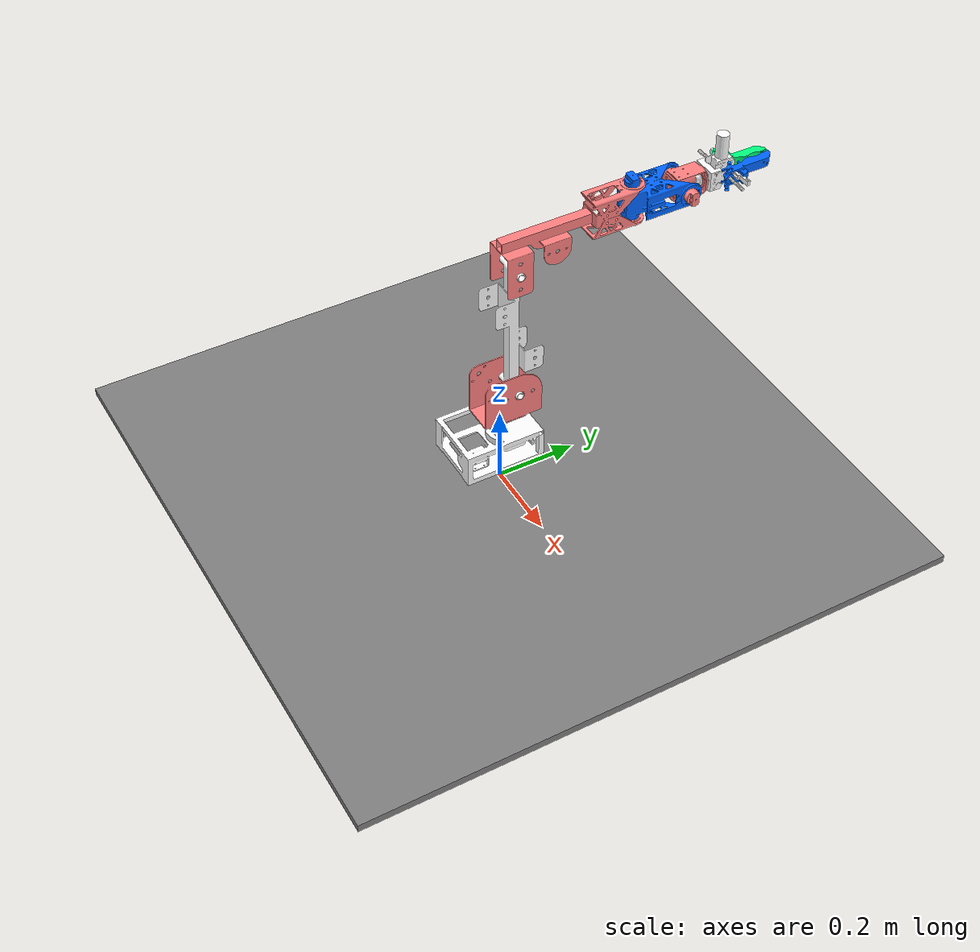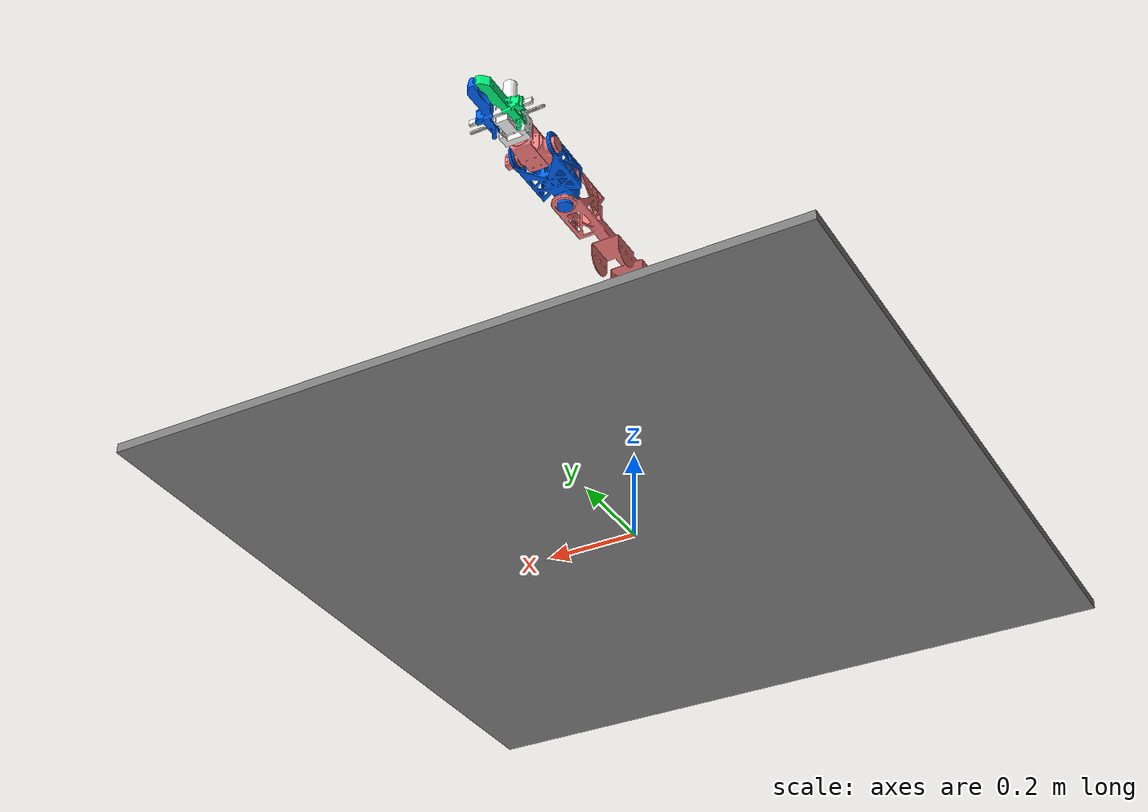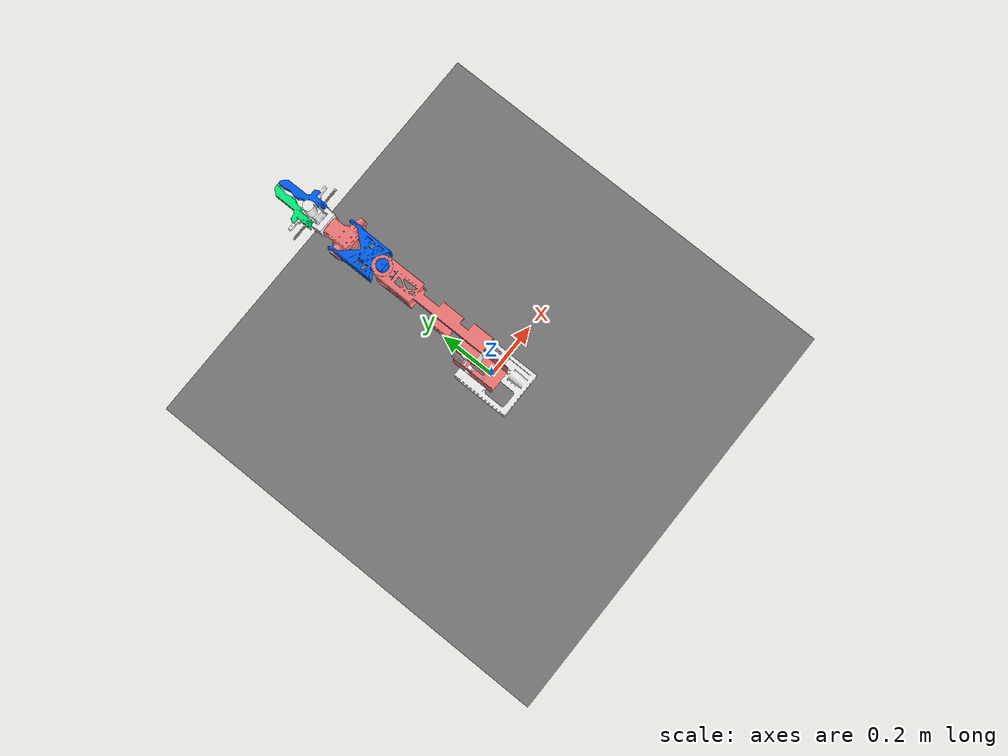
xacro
<?xml version="1.0" ?>
<!-- |    This document was autogenerated by xacro from /media/psf/Home/codes/ros/ubuntu_ws/src/prochesta_arm/urdf/prochesta_arm.urdf.xacro | -->
<!-- |    EDITING THIS FILE BY HAND IS NOT RECOMMENDED                                 | -->
<robot name="prochesta_arm">
    <material name="white">
        <color rgba="1.0 1.0 1.0 1.0"/>
    </material>
    <material name="grey">
        <color rgba="0.5 0.5 0.5 1.0"/>
    </material>
    <material name="grey_2">
        <color rgba="0.792156862745098 0.819607843137255 0.933333333333333 1" />
    </material>
    <material name="pink">
        <color rgba="1.0 0.5 0.5 1.0" />
    </material>
    <material name="blue">
        <color rgba="0.0 0.4 1.0 1.0" />
    </material>
    <material name="green">
        <color rgba="0.0 1.0 0.5 1.0" />
    </material>
    <link name="base_bar">
        <visual>
            <origin xyz="0.0 0.0 0.05" rpy="0.0 0.0 0.0"/>
            <geometry>
                <box size="0.01 0.01 0.1"/>
            </geometry>
            <material name="grey"/>
        </visual>
        <collision>
            <origin xyz="0.0 0.0 0.05" rpy="0.0 0.0 0.0"/>
            <geometry>
                <box size="0.01 0.01 0.1"/>
            </geometry>
        </collision>
    </link>
    <joint name="base_plane__ArmBase" type="fixed">
        <origin rpy="0.0 0.0 0.0" xyz="0.0546412131471822 0.0 0.11" />
        <parent link="base_bar" />
        <child link="ArmBase" />
        <axis xyz="0.0 0.0 0.0" />
        <limit lower="0.0" upper="0.0" effort="1000.0" velocity="50.0"/>
    </joint>
    <joint name="base_bar__base_plane" type="fixed">
        <origin xyz="0.0 0.0 0.0" rpy="0.0 0.0 0.0"/>
        <parent link="base_plane"/>
        <child link="base_bar"/>
        <axis xyz="0.0 0.0 0.0"/>
        <limit lower="0.0" upper="0.0" effort="0.0" velocity="0.0"/>
    </joint>
    <link name="base_plane">
        <visual name="">
            <origin xyz="0.0 0.0 0.01" rpy="0.0 0.0 0.0"/>
            <geometry>
                <box size="1.5 1.5 0.02"/>
            </geometry>
            <material name="grey"/>
        </visual>
        <collision>
            <origin xyz="0.0 0.0 0.01" rpy="0.0 0.0 0.0"/>
            <geometry>
                <box size="1.5 1.5 0.02"/>
            </geometry>
        </collision>
    </link>
    <link name="ArmBase">
        <inertial>
            <origin rpy="0 0 0" xyz="-0.0546412131471822 0.0142569733044021 0.0105265889786102" />
            <mass value="0.392347184025621" />
            <inertia ixx="0.00037313359562078" ixy="-3.88508187746182E-07" ixz="-9.7227823468437E-06" iyy="0.000612254064917396" iyz="6.685567634577E-07" izz="0.000292429195752973" />
        </inertial>
        <visual>
            <origin rpy="0 0 0" xyz="0 0 0" />
            <geometry>
                <mesh filename="package://prochesta_arm/meshes/ArmBase.STL" />
            </geometry>
            <material name="white"/>
        </visual>
        <collision>
            <origin rpy="0 0 0" xyz="0 0 0" />
            <geometry>
                <mesh filename="package://prochesta_arm/meshes/ArmBase.STL" />
            </geometry>
        </collision>
    </link>
    <link name="BaseShaft">
        <inertial>
            <origin rpy="0 0 0" xyz="-0.00124611489784311 -0.108184816547343 -1.18094289902615E-09" />
            <mass value="0.172603193441375" />
            <inertia ixx="0.000449963539893855" ixy="2.29673976828531E-06" ixz="4.03285265163475E-09" iyy="0.000436230277248471" iyz="-5.17320253939005E-12" izz="0.000511313152396509" />
        </inertial>
        <visual>
            <origin rpy="0 0 0" xyz="0 0 0" />
            <geometry>
                <mesh filename="package://prochesta_arm/meshes/BaseShaft.STL" />
            </geometry>
            <material name="pink"/>
        </visual>
        <collision>
            <origin rpy="0 0 0" xyz="0 0 0" />
            <geometry>
                <mesh filename="package://prochesta_arm/meshes/BaseShaft.STL" />
            </geometry>
        </collision>
    </link>
    <joint name="ArmBase__BaseShaft" type="revolute">
        <origin rpy="-1.5708 0 -1.5708" xyz="-0.075617 0.021609 0" />
        <parent link="ArmBase" />
        <child link="BaseShaft" />
        <axis xyz="0 1 0" />
        <limit effort="1000" lower="-3.1416" upper="3.1416" velocity="50" />
        <dynamics damping="10.0" friction="10.0"/>
    </joint>
    <link name="Shoulder">
        <inertial>
            <origin rpy="0 0 0" xyz="0.00251674474561527 0.170121527752926 0.00159696012847385" />
            <mass value="0.100791466963889" />
            <inertia ixx="0.000469966041530564" ixy="-5.89764046954074E-06" ixz="5.65207828543954E-09" iyy="7.13384967018999E-05" iyz="-3.44218965703515E-07" izz="0.000512104689605307" />
        </inertial>
        <visual>
            <origin rpy="0 0 0" xyz="0 0 0" />
            <geometry>
                <mesh filename="package://prochesta_arm/meshes/Shoulder.STL" />
            </geometry>
            <material name="white"/>
        </visual>
        <collision>
            <origin rpy="0 0 0" xyz="0 0 0" />
            <geometry>
                <mesh filename="package://prochesta_arm/meshes/Shoulder.STL" />
            </geometry>
        </collision>
    </link>
    <joint name="BaseShaft__Shoulder" type="revolute">
        <origin rpy="1.5535 1.556 -1.5873" xyz="-0.02 -0.1456 0" />
        <parent link="BaseShaft" />
        <child link="Shoulder" />
        <axis xyz="-0.99989 0.01479 0.00025546" />
        <!-- limits have been calculated manually-->
        <limit effort="1000" lower="-1" upper=".5" velocity="50" />
        <dynamics damping="10.0" friction="10.0"/>
    </joint>
    <link name="Elbow">
        <inertial>
            <origin rpy="0 0 0" xyz="-4.98394797654456E-11 -3.62130138409911E-05 -0.17234820422493" />
            <mass value="0.155859341630008" />
            <inertia ixx="0.000268369583946352" ixy="2.061494260678E-10" ixz="-6.45772822678737E-11" iyy="0.000298530192977532" iyz="-4.44744351270454E-05" izz="0.000181542359930575" />
        </inertial>
        <visual>
            <origin rpy="0 0 0" xyz="0 0 0" />
            <geometry>
                <mesh filename="package://prochesta_arm/meshes/Elbow.STL" />
            </geometry>
            <material name="pink"/>
        </visual>
        <collision>
            <origin rpy="0 0 0" xyz="0 0 0" />
            <geometry>
                <mesh filename="package://prochesta_arm/meshes/Elbow.STL" />
            </geometry>
        </collision>
    </link>
    <joint name="Shoulder__Elbow" type="revolute">
        <origin rpy="-2.8163 -0.00025546 3.1268" xyz="0.0051765 0.34996 0.00027318" />
        <parent link="Shoulder" />
        <child link="Elbow" />
        <axis xyz="1 0 0" />
        <!-- limits have been calculated manually-->
        <limit effort="1000" lower="-0.5" upper=".7837" velocity="50" />
        <dynamics damping="10.0" friction="10.0"/>
    </joint>
    <link name="Yaw">
        <inertial>
            <origin rpy="0 0 0" xyz="-0.00438644516368353 0.0559409791205142 -0.0570850114857289" />
            <mass value="0.296477336396768" />
            <inertia ixx="0.000492376543215998" ixy="-1.09052812794105E-05" ixz="-2.66243025248788E-05" iyy="0.000302345188534722" iyz="-2.34599297023637E-05" izz="0.000282182542169169" />
        </inertial>
        <visual>
            <origin rpy="0 0 0" xyz="0 0 0" />
            <geometry>
                <mesh filename="package://prochesta_arm/meshes/Yaw.STL" />
            </geometry>
            <material name="blue"/>
        </visual>
        <collision>
            <origin rpy="0 0 0" xyz="0 0 0" />
            <geometry>
                <mesh filename="package://prochesta_arm/meshes/Yaw.STL" />
            </geometry>
        </collision>
    </link>
    <joint name="Elbow__Yaw" type="revolute">
        <origin rpy="-0.0016492 -0.098555 0.033437" xyz="0 -0.098331 -0.29083" />
        <parent link="Elbow" />
        <child link="Yaw" />
        <axis xyz="0 0.94732 -0.3203" />
        <!-- limits have been calculated manually-->
        <limit effort="1000" lower="-1.5708" upper="1.5708" velocity="50" />
        <dynamics damping="10.0" friction="10.0"/>
    </joint>
    <link name="Pitch">
        <inertial>
            <origin rpy="0 0 0" xyz="0.00193637684331768 -0.00113094288383903 -0.00473550556070457" />
            <mass value="0.245672351084059" />
            <inertia ixx="0.000112445414870033" ixy="3.7801113676169E-06" ixz="1.13310562352918E-05" iyy="0.000222075669730552" iyz="8.19497975087401E-07" izz="0.000225909542391733" />
        </inertial>
        <visual>
            <origin rpy="0 0 0" xyz="0 0 0" />
            <geometry>
                <mesh filename="package://prochesta_arm/meshes/Pitch.STL" />
            </geometry>
            <material name="pink"/>
        </visual>
        <collision>
            <origin rpy="0 0 0" xyz="0 0 0" />
            <geometry>
                <mesh filename="package://prochesta_arm/meshes/Pitch.STL" />
            </geometry>
        </collision>
    </link>
    <joint name="Yaw__Pitch" type="revolute">
        <origin rpy="-0.095533 0.0036424 0.0092858" xyz="-0.013295 0.024778 -0.14277" />
        <parent link="Yaw" />
        <child link="Pitch" />
        <axis xyz="0.99459 -0.033268 -0.098395" />
        <!-- limits have been calculated manually-->
        <limit effort="1000" lower="-1.5708" upper="1.5708" velocity="50" />
        <dynamics damping="10.0" friction="10.0"/>
    </joint>
    <link name="Roll">
        <inertial>
            <origin rpy="0 0 0" xyz="0.013346395763443 0.026611833443925 0.0965457711475227" />
            <mass value="0.219051002803153" />
            <inertia ixx="0.000155851657200548" ixy="-1.61881929035119E-05" ixz="1.50471506253359E-05" iyy="0.000101493190927247" iyz="4.64669877102981E-05" izz="0.000174715266607372" />
        </inertial>
        <visual>
            <origin rpy="0 0 0" xyz="0 0 0" />
            <geometry>
                <mesh filename="package://prochesta_arm/meshes/Roll.STL" />
            </geometry>
            <material name="white"/>
        </visual>
        <collision>
            <origin rpy="0 0 0" xyz="0 0 0" />
            <geometry>
                <mesh filename="package://prochesta_arm/meshes/Roll.STL" />
            </geometry>
        </collision>
    </link>
    <joint name="Pitch__Roll" type="revolute">
        <origin rpy="-2.9699 0.21413 -0.25831" xyz="0 0 0" />
        <parent link="Pitch" />
        <child link="Roll" />
        <axis xyz="0.16462 0.40474 0.89949" />
        <!-- limits have been calculated manually-->
        <limit effort="1000" lower="-3.1416" upper="3.1416" velocity="50" />
        <dynamics damping="10.0" friction="10.0"/>
    </joint>
    <link name="LeftClaw">
        <inertial>
            <origin rpy="0 0 0" xyz="0.0160548042850929 0.363052679901909 -0.277299510990579" />
            <mass value="0.0710508103277403" />
            <inertia ixx="6.33292286188025E-05" ixy="-7.37244945176046E-06" ixz="-1.6248611953797E-05" iyy="5.934165926219E-05" iyz="-1.6824179025353E-05" izz="2.45890867032075E-05" />
        </inertial>
        <visual>
            <origin rpy="0 0 0" xyz="0 0 0" />
            <geometry>
                <mesh filename="package://prochesta_arm/meshes/LeftClaw.STL" />
            </geometry>
            <material name="green"/>
        </visual>
        <collision>
            <origin rpy="0 0 0" xyz="0 0 0" />
            <geometry>
                <mesh filename="package://prochesta_arm/meshes/LeftClaw.STL" />
            </geometry>
        </collision>
    </link>
    <link name="RightClaw">
        <inertial>
            <origin rpy="0 0 0" xyz="0.0160548042897368 0.363052680008611 -0.277299511621476" />
            <mass value="0.0710508080215541" />
            <inertia ixx="6.33292264052498E-05" ixy="-7.37244969866602E-06" ixz="-1.62486114309369E-05" iyy="5.9341657110105E-05" iyz="-1.68241784848982E-05" izz="2.45890872002616E-05" />
        </inertial>
        <visual>
            <origin rpy="0 0 0" xyz="0 0 0" />
            <geometry>
                <mesh filename="package://prochesta_arm/meshes/RightClaw.STL" />
            </geometry>
            <material name="blue"/>
        </visual>
        <collision>
            <origin rpy="0 0 0" xyz="0 0 0" />
            <geometry>
                <mesh filename="package://prochesta_arm/meshes/RightClaw.STL" />
            </geometry>
        </collision>
    </link>
    <joint name="Joint_LeftClaw" type="prismatic">
        <origin rpy="0 0 0" xyz="-0.0088606 -0.28846 0.43314" />
        <parent link="Roll" />
        <child link="LeftClaw" />
        <axis xyz="-0.96885 0.23743 0.070474" />
        <limit effort="1000" lower="0" upper="0.021" velocity="50" />
        <dynamics damping="10.0" friction="10.0"/>
    </joint>
    <joint name="Joint_RightClaw" type="prismatic">
        <origin rpy="0.86688 -0.30065 3.0016" xyz="0.099182 0.50791 0.05503" />
        <parent link="Roll" />
        <child link="RightClaw" />
        <axis xyz="0.96885 -0.23743 -0.070474" />
        <limit effort="1000" lower="-0.021" upper="0" velocity="50" />
        <dynamics damping="10.0" friction="10.0"/>
    </joint>

    <transmission name="trans_ArmBase__BaseShaft">
        <type>transmission_interface/SimpleTransmission</type>
        <joint name="ArmBase__BaseShaft">
            <hardwareInterface>hardware_interface/PositionJointInterface</hardwareInterface>
        </joint>
        <actuator name="ArmBase__BaseShaft_motor">
            <hardwareInterface>hardware_interface/PositionJointInterface</hardwareInterface>
            <mechanicalReduction>1</mechanicalReduction>
        </actuator>
    </transmission>
    <transmission name="trans_BaseShaft__Shoulder">
        <type>transmission_interface/SimpleTransmission</type>
        <joint name="BaseShaft__Shoulder">
            <hardwareInterface>hardware_interface/PositionJointInterface</hardwareInterface>
        </joint>
        <actuator name="BaseShaft__Shoulder_motor">
            <hardwareInterface>hardware_interface/PositionJointInterface</hardwareInterface>
            <mechanicalReduction>1</mechanicalReduction>
        </actuator>
    </transmission>
    <transmission name="trans_Shoulder__Elbow">
        <type>transmission_interface/SimpleTransmission</type>
        <joint name="Shoulder__Elbow">
            <hardwareInterface>hardware_interface/PositionJointInterface</hardwareInterface>
        </joint>
        <actuator name="Shoulder__Elbow_motor">
            <hardwareInterface>hardware_interface/PositionJointInterface</hardwareInterface>
            <mechanicalReduction>1</mechanicalReduction>
        </actuator>
    </transmission>
    <transmission name="trans_Elbow__Yaw">
        <type>transmission_interface/SimpleTransmission</type>
        <joint name="Elbow__Yaw">
            <hardwareInterface>hardware_interface/PositionJointInterface</hardwareInterface>
        </joint>
        <actuator name="Elbow__Yaw_motor">
            <hardwareInterface>hardware_interface/PositionJointInterface</hardwareInterface>
            <mechanicalReduction>1</mechanicalReduction>
        </actuator>
    </transmission>
    <transmission name="trans_Yaw__Pitch">
        <type>transmission_interface/SimpleTransmission</type>
        <joint name="Yaw__Pitch">
            <hardwareInterface>hardware_interface/PositionJointInterface</hardwareInterface>
        </joint>
        <actuator name="Yaw__Pitch_motor">
            <hardwareInterface>hardware_interface/PositionJointInterface</hardwareInterface>
            <mechanicalReduction>1</mechanicalReduction>
        </actuator>
    </transmission>
    <transmission name="trans_Pitch__Roll">
        <type>transmission_interface/SimpleTransmission</type>
        <joint name="Pitch__Roll">
            <hardwareInterface>hardware_interface/PositionJointInterface</hardwareInterface>
        </joint>
        <actuator name="Pitch__Roll_motor">
            <hardwareInterface>hardware_interface/PositionJointInterface</hardwareInterface>
            <mechanicalReduction>1</mechanicalReduction>
        </actuator>
    </transmission>
    <transmission name="trans_Joint_LeftClaw">
        <type>transmission_interface/SimpleTransmission</type>
        <joint name="Joint_LeftClaw">
            <hardwareInterface>hardware_interface/PositionJointInterface</hardwareInterface>
        </joint>
        <actuator name="Joint_LeftClaw_motor">
            <hardwareInterface>hardware_interface/PositionJointInterface</hardwareInterface>
            <mechanicalReduction>1</mechanicalReduction>
        </actuator>
    </transmission>
    <transmission name="trans_Joint_RightClaw">
        <type>transmission_interface/SimpleTransmission</type>
        <joint name="Joint_RightClaw">
            <hardwareInterface>hardware_interface/PositionJointInterface</hardwareInterface>
        </joint>
        <actuator name="Joint_RightClaw_motor">
            <hardwareInterface>hardware_interface/PositionJointInterface</hardwareInterface>
            <mechanicalReduction>1</mechanicalReduction>
        </actuator>
    </transmission>
    <transmission name="trans_base_plane__ArmBase">
        <type>transmission_interface/SimpleTransmission</type>
        <joint name="base_plane__ArmBase">
            <hardwareInterface>hardware_interface/PositionJointInterface</hardwareInterface>
        </joint>
        <actuator name="base_plane__ArmBase_motor">
            <hardwareInterface>hardware_interface/PositionJointInterface</hardwareInterface>
            <mechanicalReduction>1</mechanicalReduction>
        </actuator>
    </transmission>
    <transmission name="trans_base_bar__base_plane">
        <type>transmission_interface/SimpleTransmission</type>
        <joint name="base_bar__base_plane">
            <hardwareInterface>hardware_interface/PositionJointInterface</hardwareInterface>
        </joint>
        <actuator name="base_bar__base_plane_motor">
            <hardwareInterface>hardware_interface/PositionJointInterface</hardwareInterface>
            <mechanicalReduction>1</mechanicalReduction>
        </actuator>
    </transmission>
    <gazebo>
        <plugin filename="libgazebo_ros_control.so" name="gazebo_ros_control">
            <robotNamespace>/</robotNamespace>
            <legacyModeNS>true</legacyModeNS>
        </plugin>
    </gazebo>
</robot>
